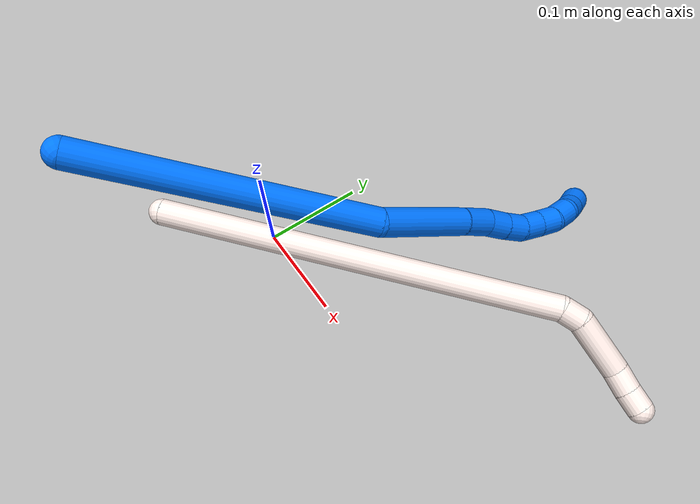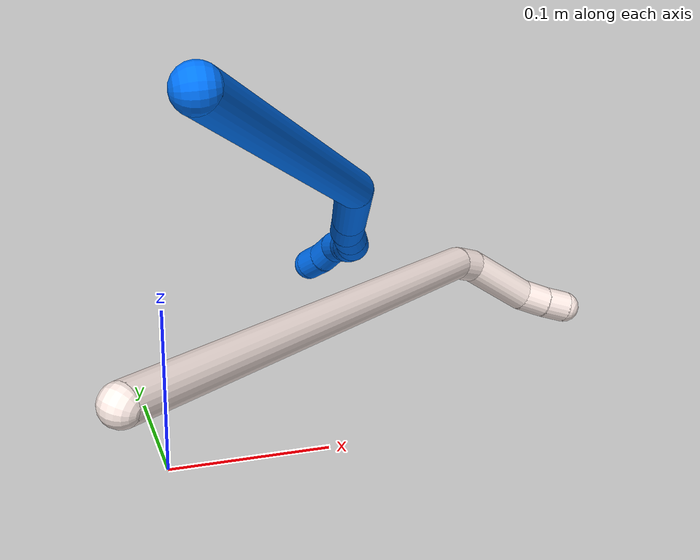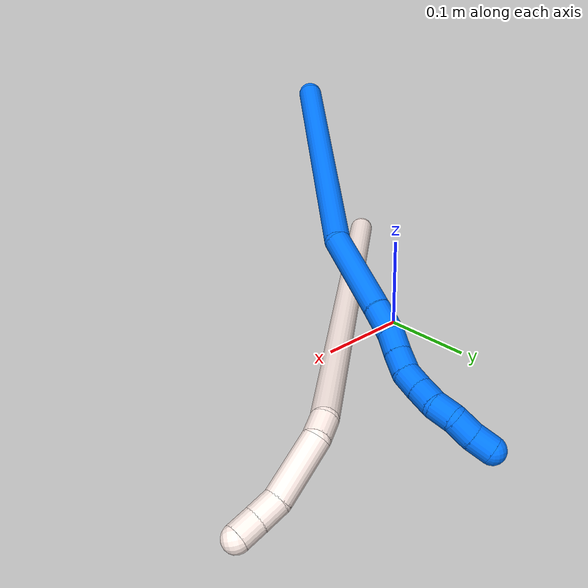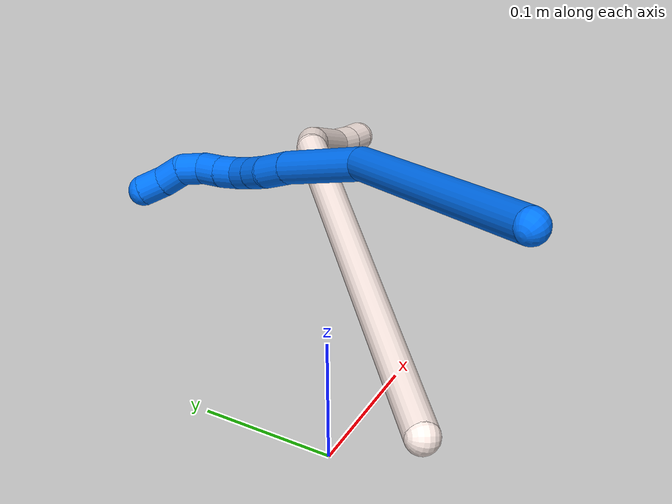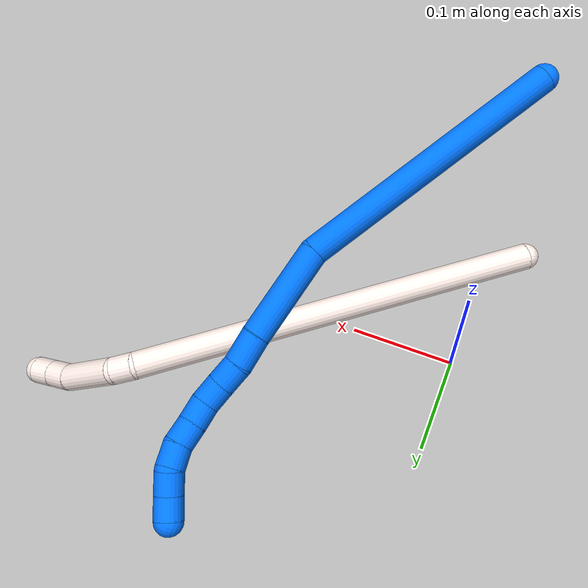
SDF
<sdf version="1.7">
 <world name="default">
  <model name="photoneo_s_sensor">
   <static>1</static>
   <pose>0 0 2 1.57079 1.57079 3.14159</pose>
   <link name="link">
    <inertial><mass>0.1</mass></inertial>
    <sensor name="sensor" type="depth">
     <update_rate>30</update_rate>
     <camera>
      <horizontal_fov>1.22</horizontal_fov>
      <image><width>1920</width><height>1200</height><format>B8G8R8</format></image>
      <clip><near>0.1</near><far>4</far></clip>
      <depth_camera><output>points</output></depth_camera>
     </camera>
     <plugin name="camera_plugin" filename="libgazebo_ros_depth_camera.so">
      <baseline>0.2</baseline>
      <alwaysOn>1</alwaysOn>
      <updateRate>0.0</updateRate>
      <cameraName>camera_ir</cameraName>
      <imageTopicName>/camera/color/image_raw</imageTopicName>
      <cameraInfoTopicName>/camera/color/camera_info</cameraInfoTopicName>
      <depthImageTopicName>/camera/depth/image_raw</depthImageTopicName>
      <depthImageCameraInfoTopicName>/camera/depth/camera_info</depthImageCameraInfoTopicName>
      <pointCloudTopicName>/camera/depth/points</pointCloudTopicName>
      <frameName>fr_optical</frameName>
      <pointCloudCutoff>0.1</pointCloudCutoff>
      <pointCloudCutoffMax>2.0</pointCloudCutoffMax>
      <distortionK1>0</distortionK1>
      <distortionK2>0</distortionK2>
      <distortionK3>0</distortionK3>
      <distortionT1>0</distortionT1>
      <distortionT2>0</distortionT2>
      <CxPrime>0</CxPrime>
      <Cx>0</Cx>
      <Cy>0</Cy>
      <focalLength>0</focalLength>
      <hackBaseline>0</hackBaseline>
     </plugin>
    </sensor>
   </link>
  </model>
  <model name="bin">
   <static>1</static>
   <link name="bottom">
    <collision name="collision-bottom">
     <pose>0 0 -0.01 0 -0 0</pose>
     <geometry><box><size>0.8 0.6 0.02</size></box></geometry>
     <surface>
      <friction><ode><mu>100</mu><mu2>100</mu2></ode></friction>
      <contact><collide_bitmask>65535</collide_bitmask></contact>
     </surface>
    </collision>
   </link>
   <link name="west_wall">
    <collision name="collision-west_wall">
     <pose>-0.41 0 0.1 0 -0 0</pose>
     <geometry><box><size>0.02 0.6 0.2</size></box></geometry>
     <surface>
      <friction><ode><mu>100</mu><mu2>100</mu2></ode></friction>
      <contact><collide_bitmask>65535</collide_bitmask></contact>
     </surface>
    </collision>
   </link>
   <link name="east_wall">
    <collision name="collision-east_wall">
     <pose>0.41 0 0.1 0 -0 0</pose>
     <geometry><box><size>0.02 0.6 0.2</size></box></geometry>
     <surface>
      <friction><ode><mu>100</mu><mu2>100</mu2></ode></friction>
      <contact><collide_bitmask>65535</collide_bitmask></contact>
     </surface>
    </collision>
   </link>
   <link name="south_wall">
    <collision name="collision-south_wall">
     <pose>0 -0.31 0.1 0 -0 0</pose>
     <geometry><box><size>0.8 0.02 0.2</size></box></geometry>
     <surface>
      <friction><ode><mu>100</mu><mu2>100</mu2></ode></friction>
      <contact><collide_bitmask>65535</collide_bitmask></contact>
     </surface>
    </collision>
   </link>
   <link name="north_wall">
    <collision name="collision-north_wall">
     <pose>0 0.31 0.1 0 -0 0</pose>
     <geometry><box><size>0.8 0.02 0.2</size></box></geometry>
     <surface>
      <friction><ode><mu>100</mu><mu2>100</mu2></ode></friction>
      <contact><collide_bitmask>65535</collide_bitmask></contact>
     </surface>
    </collision>
   </link>
  </model>
  <model name="11">
   <static>0</static>
   <link name="11">
    <collision name="collision-cylinder-e_1_1_4">
     <pose>0.145928 0.11942 0.023235 -1.37863 0.875847 -0.736625</pose>
     <geometry><cylinder><radius>0.0125</radius><length>0.379979</length></cylinder></geometry>
     <surface>
      <friction><ode><mu>1.16</mu><mu2>1.16</mu2><slip1>0</slip1><slip2>0</slip2></ode></friction>
      <contact><ode><kp>1e+06</kp><kd>1</kd><max_vel>0</max_vel><min_depth>0.001</min_depth></ode></contact>
     </surface>
    </collision>
    <visual name="visual-cylinder-e_1_1_4">
     <pose>0.145928 0.11942 0.023235 -1.37863 0.875847 -0.736625</pose>
     <geometry><cylinder><radius>0.0125</radius><length>0.379979</length></cylinder></geometry>
     <material><ambient>1 0.933333 0.909804 1</ambient></material>
    </visual>
    <collision name="collision-cylinder-e_2_4_5">
     <pose>0.300327 0.243143 0.050379 -0.833362 0.969287 -0.457907</pose>
     <geometry><cylinder><radius>0.0125</radius><length>0.020547</length></cylinder></geometry>
     <surface>
      <friction><ode><mu>1.16</mu><mu2>1.16</mu2><slip1>0</slip1><slip2>0</slip2></ode></friction>
      <contact><ode><kp>1e+06</kp><kd>1</kd><max_vel>0</max_vel><min_depth>0.001</min_depth></ode></contact>
     </surface>
    </collision>
    <visual name="visual-cylinder-e_2_4_5">
     <pose>0.300327 0.243143 0.050379 -0.833362 0.969287 -0.457907</pose>
     <geometry><cylinder><radius>0.0125</radius><length>0.020547</length></cylinder></geometry>
     <material><ambient>1 0.933333 0.909804 1</ambient></material>
    </visual>
    <collision name="collision-cylinder-e_3_5_6">
     <pose>0.330628 0.251051 0.072545 -0.19492 0.864873 -0.090194</pose>
     <geometry><cylinder><radius>0.0125</radius><length>0.057373</length></cylinder></geometry>
     <surface>
      <friction><ode><mu>1.16</mu><mu2>1.16</mu2><slip1>0</slip1><slip2>0</slip2></ode></friction>
      <contact><ode><kp>1e+06</kp><kd>1</kd><max_vel>0</max_vel><min_depth>0.001</min_depth></ode></contact>
     </surface>
    </collision>
    <visual name="visual-cylinder-e_3_5_6">
     <pose>0.330628 0.251051 0.072545 -0.19492 0.864873 -0.090194</pose>
     <geometry><cylinder><radius>0.0125</radius><length>0.057373</length></cylinder></geometry>
     <material><ambient>1 0.933333 0.909804 1</ambient></material>
    </visual>
    <collision name="collision-cylinder-e_4_6_7">
     <pose>0.358748 0.257308 0.099434 -0.298237 0.608314 -0.094246</pose>
     <geometry><cylinder><radius>0.0125</radius><length>0.022008</length></cylinder></geometry>
     <surface>
      <friction><ode><mu>1.16</mu><mu2>1.16</mu2><slip1>0</slip1><slip2>0</slip2></ode></friction>
      <contact><ode><kp>1e+06</kp><kd>1</kd><max_vel>0</max_vel><min_depth>0.001</min_depth></ode></contact>
     </surface>
    </collision>
    <visual name="visual-cylinder-e_4_6_7">
     <pose>0.358748 0.257308 0.099434 -0.298237 0.608314 -0.094246</pose>
     <geometry><cylinder><radius>0.0125</radius><length>0.022008</length></cylinder></geometry>
     <material><ambient>1 0.933333 0.909804 1</ambient></material>
    </visual>
    <collision name="collision-cylinder-e_5_7_2">
     <pose>0.370748 0.263136 0.115696 -0.394249 0.604713 -0.124431</pose>
     <geometry><cylinder><radius>0.0125</radius><length>0.020093</length></cylinder></geometry>
     <surface>
      <friction><ode><mu>1.16</mu><mu2>1.16</mu2><slip1>0</slip1><slip2>0</slip2></ode></friction>
      <contact><ode><kp>1e+06</kp><kd>1</kd><max_vel>0</max_vel><min_depth>0.001</min_depth></ode></contact>
     </surface>
    </collision>
    <visual name="visual-cylinder-e_5_7_2">
     <pose>0.370748 0.263136 0.115696 -0.394249 0.604713 -0.124431</pose>
     <geometry><cylinder><radius>0.0125</radius><length>0.020093</length></cylinder></geometry>
     <material><ambient>1 0.933333 0.909804 1</ambient></material>
    </visual>
    <collision name="collision-sphere-2">
     <pose>0.37646 0.266311 0.123327 0 -0 0</pose>
     <geometry><sphere><radius>0.0125</radius></sphere></geometry>
     <surface>
      <friction><ode><mu>1.16</mu><mu2>1.16</mu2><slip1>0</slip1><slip2>0</slip2></ode></friction>
      <contact><ode><kp>1e+06</kp><kd>1</kd><max_vel>0</max_vel><min_depth>0.001</min_depth></ode></contact>
     </surface>
    </collision>
    <visual name="visual-sphere-2">
     <pose>0.37646 0.266311 0.123327 0 -0 0</pose>
     <geometry><sphere><radius>0.0125</radius></sphere></geometry>
     <material><ambient>1 0.933333 0.909804 1</ambient></material>
    </visual>
    <collision name="collision-sphere-7">
     <pose>0.365036 0.259962 0.108065 0 -0 0</pose>
     <geometry><sphere><radius>0.0125</radius></sphere></geometry>
     <surface>
      <friction><ode><mu>1.16</mu><mu2>1.16</mu2><slip1>0</slip1><slip2>0</slip2></ode></friction>
      <contact><ode><kp>1e+06</kp><kd>1</kd><max_vel>0</max_vel><min_depth>0.001</min_depth></ode></contact>
     </surface>
    </collision>
    <visual name="visual-sphere-7">
     <pose>0.365036 0.259962 0.108065 0 -0 0</pose>
     <geometry><sphere><radius>0.0125</radius></sphere></geometry>
     <material><ambient>1 0.933333 0.909804 1</ambient></material>
    </visual>
    <collision name="collision-sphere-6">
     <pose>0.352459 0.254655 0.090803 0 -0 0</pose>
     <geometry><sphere><radius>0.0125</radius></sphere></geometry>
     <surface>
      <friction><ode><mu>1.16</mu><mu2>1.16</mu2><slip1>0</slip1><slip2>0</slip2></ode></friction>
      <contact><ode><kp>1e+06</kp><kd>1</kd><max_vel>0</max_vel><min_depth>0.001</min_depth></ode></contact>
     </surface>
    </collision>
    <visual name="visual-sphere-6">
     <pose>0.352459 0.254655 0.090803 0 -0 0</pose>
     <geometry><sphere><radius>0.0125</radius></sphere></geometry>
     <material><ambient>1 0.933333 0.909804 1</ambient></material>
    </visual>
    <collision name="collision-sphere-5">
     <pose>0.308798 0.247446 0.054288 0 -0 0</pose>
     <geometry><sphere><radius>0.0125</radius></sphere></geometry>
     <surface>
      <friction><ode><mu>1.16</mu><mu2>1.16</mu2><slip1>0</slip1><slip2>0</slip2></ode></friction>
      <contact><ode><kp>1e+06</kp><kd>1</kd><max_vel>0</max_vel><min_depth>0.001</min_depth></ode></contact>
     </surface>
    </collision>
    <visual name="visual-sphere-5">
     <pose>0.308798 0.247446 0.054288 0 -0 0</pose>
     <geometry><sphere><radius>0.0125</radius></sphere></geometry>
     <material><ambient>1 0.933333 0.909804 1</ambient></material>
    </visual>
    <collision name="collision-sphere-1">
     <geometry><sphere><radius>0.0125</radius></sphere></geometry>
     <surface>
      <friction><ode><mu>1.16</mu><mu2>1.16</mu2><slip1>0</slip1><slip2>0</slip2></ode></friction>
      <contact><ode><kp>1e+06</kp><kd>1</kd><max_vel>0</max_vel><min_depth>0.001</min_depth></ode></contact>
     </surface>
    </collision>
    <visual name="visual-sphere-1">
     <geometry><sphere><radius>0.0125</radius></sphere></geometry>
     <material><ambient>1 0.933333 0.909804 1</ambient></material>
    </visual>
    <collision name="collision-sphere-4">
     <pose>0.291857 0.23884 0.04647 0 -0 0</pose>
     <geometry><sphere><radius>0.0125</radius></sphere></geometry>
     <surface>
      <friction><ode><mu>1.16</mu><mu2>1.16</mu2><slip1>0</slip1><slip2>0</slip2></ode></friction>
      <contact><ode><kp>1e+06</kp><kd>1</kd><max_vel>0</max_vel><min_depth>0.001</min_depth></ode></contact>
     </surface>
    </collision>
    <visual name="visual-sphere-4">
     <pose>0.291857 0.23884 0.04647 0 -0 0</pose>
     <geometry><sphere><radius>0.0125</radius></sphere></geometry>
     <material><ambient>1 0.933333 0.909804 1</ambient></material>
    </visual>
    <inertial>
     <pose>0.191869 0.151453 0.037078 0 -0 0</pose>
     <mass>0.5</mass>
     <inertia>
      <ixx>0.000245</ixx>
      <ixy>0</ixy>
      <ixz>0</ixz>
      <iyy>0.00104</iyy>
      <iyz>0</iyz>
      <izz>-0.006417</izz>
     </inertia>
    </inertial>
   </link>
   <pose>-0.034711 -0.088538 0.082549 1.87523 0.685722 1.01568</pose>
  </model>
  <model name="14">
   <static>0</static>
   <link name="14">
    <collision name="collision-cylinder-e_1_1_4">
     <pose>-0.02235 0.107897 0.053116 -1.11334 -0.183749 0.114549</pose>
     <geometry><cylinder><radius>0.0125</radius><length>0.244644</length></cylinder></geometry>
     <surface>
      <friction><ode><mu>1.16</mu><mu2>1.16</mu2><slip1>0</slip1><slip2>0</slip2></ode></friction>
      <contact><ode><kp>1e+06</kp><kd>1</kd><max_vel>0</max_vel><min_depth>0.001</min_depth></ode></contact>
     </surface>
    </collision>
    <visual name="visual-cylinder-e_1_1_4">
     <pose>-0.02235 0.107897 0.053116 -1.11334 -0.183749 0.114549</pose>
     <geometry><cylinder><radius>0.0125</radius><length>0.244644</length></cylinder></geometry>
     <material><ambient>0 0.462745 1 1</ambient></material>
    </visual>
    <collision name="collision-cylinder-e_2_4_5">
     <pose>-0.052639 0.257201 0.111399 -1.44664 -0.188003 0.166107</pose>
     <geometry><cylinder><radius>0.0125</radius><length>0.084953</length></cylinder></geometry>
     <surface>
      <friction><ode><mu>1.16</mu><mu2>1.16</mu2><slip1>0</slip1><slip2>0</slip2></ode></friction>
      <contact><ode><kp>1e+06</kp><kd>1</kd><max_vel>0</max_vel><min_depth>0.001</min_depth></ode></contact>
     </surface>
    </collision>
    <visual name="visual-cylinder-e_2_4_5">
     <pose>-0.052639 0.257201 0.111399 -1.44664 -0.188003 0.166107</pose>
     <geometry><cylinder><radius>0.0125</radius><length>0.084953</length></cylinder></geometry>
     <material><ambient>0 0.462745 1 1</ambient></material>
    </visual>
    <collision name="collision-cylinder-e_3_5_6">
     <pose>-0.062182 0.312596 0.117736 -1.48739 -0.113766 0.10467</pose>
     <geometry><cylinder><radius>0.0125</radius><length>0.028256</length></cylinder></geometry>
     <surface>
      <friction><ode><mu>1.16</mu><mu2>1.16</mu2><slip1>0</slip1><slip2>0</slip2></ode></friction>
      <contact><ode><kp>1e+06</kp><kd>1</kd><max_vel>0</max_vel><min_depth>0.001</min_depth></ode></contact>
     </surface>
    </collision>
    <visual name="visual-cylinder-e_3_5_6">
     <pose>-0.062182 0.312596 0.117736 -1.48739 -0.113766 0.10467</pose>
     <geometry><cylinder><radius>0.0125</radius><length>0.028256</length></cylinder></geometry>
     <material><ambient>0 0.462745 1 1</ambient></material>
    </visual>
    <collision name="collision-cylinder-e_4_6_7">
     <pose>-0.064649 0.33677 0.121656 -1.30701 -0.081636 0.062527</pose>
     <geometry><cylinder><radius>0.0125</radius><length>0.021171</length></cylinder></geometry>
     <surface>
      <friction><ode><mu>1.16</mu><mu2>1.16</mu2><slip1>0</slip1><slip2>0</slip2></ode></friction>
      <contact><ode><kp>1e+06</kp><kd>1</kd><max_vel>0</max_vel><min_depth>0.001</min_depth></ode></contact>
     </surface>
    </collision>
    <visual name="visual-cylinder-e_4_6_7">
     <pose>-0.064649 0.33677 0.121656 -1.30701 -0.081636 0.062527</pose>
     <geometry><cylinder><radius>0.0125</radius><length>0.021171</length></cylinder></geometry>
     <material><ambient>0 0.462745 1 1</ambient></material>
    </visual>
    <collision name="collision-cylinder-e_5_7_8">
     <pose>-0.066926 0.356835 0.126796 -1.33359 -0.138222 0.108854</pose>
     <geometry><cylinder><radius>0.0125</radius><length>0.020524</length></cylinder></geometry>
     <surface>
      <friction><ode><mu>1.16</mu><mu2>1.16</mu2><slip1>0</slip1><slip2>0</slip2></ode></friction>
      <contact><ode><kp>1e+06</kp><kd>1</kd><max_vel>0</max_vel><min_depth>0.001</min_depth></ode></contact>
     </surface>
    </collision>
    <visual name="visual-cylinder-e_5_7_8">
     <pose>-0.066926 0.356835 0.126796 -1.33359 -0.138222 0.108854</pose>
     <geometry><cylinder><radius>0.0125</radius><length>0.020524</length></cylinder></geometry>
     <material><ambient>0 0.462745 1 1</ambient></material>
    </visual>
    <collision name="collision-cylinder-e_6_8_9">
     <pose>-0.071768 0.376205 0.129466 -1.54109 -0.346482 0.336533</pose>
     <geometry><cylinder><radius>0.0125</radius><length>0.020189</length></cylinder></geometry>
     <surface>
      <friction><ode><mu>1.16</mu><mu2>1.16</mu2><slip1>0</slip1><slip2>0</slip2></ode></friction>
      <contact><ode><kp>1e+06</kp><kd>1</kd><max_vel>0</max_vel><min_depth>0.001</min_depth></ode></contact>
     </surface>
    </collision>
    <visual name="visual-cylinder-e_6_8_9">
     <pose>-0.071768 0.376205 0.129466 -1.54109 -0.346482 0.336533</pose>
     <geometry><cylinder><radius>0.0125</radius><length>0.020189</length></cylinder></geometry>
     <material><ambient>0 0.462745 1 1</ambient></material>
    </visual>
    <collision name="collision-cylinder-e_7_9_10">
     <pose>-0.07934 0.394786 0.130254 -1.51524 -0.427151 0.404698</pose>
     <geometry><cylinder><radius>0.0125</radius><length>0.020008</length></cylinder></geometry>
     <surface>
      <friction><ode><mu>1.16</mu><mu2>1.16</mu2><slip1>0</slip1><slip2>0</slip2></ode></friction>
      <contact><ode><kp>1e+06</kp><kd>1</kd><max_vel>0</max_vel><min_depth>0.001</min_depth></ode></contact>
     </surface>
    </collision>
    <visual name="visual-cylinder-e_7_9_10">
     <pose>-0.07934 0.394786 0.130254 -1.51524 -0.427151 0.404698</pose>
     <geometry><cylinder><radius>0.0125</radius><length>0.020008</length></cylinder></geometry>
     <material><ambient>0 0.462745 1 1</ambient></material>
    </visual>
    <collision name="collision-cylinder-e_8_10_11">
     <pose>-0.087333 0.412928 0.128365 -1.82938 -0.389986 0.502242</pose>
     <geometry><cylinder><radius>0.0125</radius><length>0.020243</length></cylinder></geometry>
     <surface>
      <friction><ode><mu>1.16</mu><mu2>1.16</mu2><slip1>0</slip1><slip2>0</slip2></ode></friction>
      <contact><ode><kp>1e+06</kp><kd>1</kd><max_vel>0</max_vel><min_depth>0.001</min_depth></ode></contact>
     </surface>
    </collision>
    <visual name="visual-cylinder-e_8_10_11">
     <pose>-0.087333 0.412928 0.128365 -1.82938 -0.389986 0.502242</pose>
     <geometry><cylinder><radius>0.0125</radius><length>0.020243</length></cylinder></geometry>
     <material><ambient>0 0.462745 1 1</ambient></material>
    </visual>
    <collision name="collision-cylinder-e_9_11_12">
     <pose>-0.090944 0.431091 0.12185 -1.99554 0.023724 -0.036765</pose>
     <geometry><cylinder><radius>0.0125</radius><length>0.020009</length></cylinder></geometry>
     <surface>
      <friction><ode><mu>1.16</mu><mu2>1.16</mu2><slip1>0</slip1><slip2>0</slip2></ode></friction>
      <contact><ode><kp>1e+06</kp><kd>1</kd><max_vel>0</max_vel><min_depth>0.001</min_depth></ode></contact>
     </surface>
    </collision>
    <visual name="visual-cylinder-e_9_11_12">
     <pose>-0.090944 0.431091 0.12185 -1.99554 0.023724 -0.036765</pose>
     <geometry><cylinder><radius>0.0125</radius><length>0.020009</length></cylinder></geometry>
     <material><ambient>0 0.462745 1 1</ambient></material>
    </visual>
    <collision name="collision-cylinder-e_10_12_2">
     <pose>-0.09185 0.448902 0.112926 -2.07525 -0.114609 0.193796</pose>
     <geometry><cylinder><radius>0.0125</radius><length>0.020002</length></cylinder></geometry>
     <surface>
      <friction><ode><mu>1.16</mu><mu2>1.16</mu2><slip1>0</slip1><slip2>0</slip2></ode></friction>
      <contact><ode><kp>1e+06</kp><kd>1</kd><max_vel>0</max_vel><min_depth>0.001</min_depth></ode></contact>
     </surface>
    </collision>
    <visual name="visual-cylinder-e_10_12_2">
     <pose>-0.09185 0.448902 0.112926 -2.07525 -0.114609 0.193796</pose>
     <geometry><cylinder><radius>0.0125</radius><length>0.020002</length></cylinder></geometry>
     <material><ambient>0 0.462745 1 1</ambient></material>
    </visual>
    <collision name="collision-sphere-2">
     <pose>-0.092994 0.4576 0.108124 0 -0 0</pose>
     <geometry><sphere><radius>0.0125</radius></sphere></geometry>
     <surface>
      <friction><ode><mu>1.16</mu><mu2>1.16</mu2><slip1>0</slip1><slip2>0</slip2></ode></friction>
      <contact><ode><kp>1e+06</kp><kd>1</kd><max_vel>0</max_vel><min_depth>0.001</min_depth></ode></contact>
     </surface>
    </collision>
    <visual name="visual-sphere-2">
     <pose>-0.092994 0.4576 0.108124 0 -0 0</pose>
     <geometry><sphere><radius>0.0125</radius></sphere></geometry>
     <material><ambient>0 0.462745 1 1</ambient></material>
    </visual>
    <collision name="collision-sphere-12">
     <pose>-0.090706 0.440204 0.117728 0 -0 0</pose>
     <geometry><sphere><radius>0.0125</radius></sphere></geometry>
     <surface>
      <friction><ode><mu>1.16</mu><mu2>1.16</mu2><slip1>0</slip1><slip2>0</slip2></ode></friction>
      <contact><ode><kp>1e+06</kp><kd>1</kd><max_vel>0</max_vel><min_depth>0.001</min_depth></ode></contact>
     </surface>
    </collision>
    <visual name="visual-sphere-12">
     <pose>-0.090706 0.440204 0.117728 0 -0 0</pose>
     <geometry><sphere><radius>0.0125</radius></sphere></geometry>
     <material><ambient>0 0.462745 1 1</ambient></material>
    </visual>
    <collision name="collision-sphere-11">
     <pose>-0.091181 0.421978 0.125971 0 -0 0</pose>
     <geometry><sphere><radius>0.0125</radius></sphere></geometry>
     <surface>
      <friction><ode><mu>1.16</mu><mu2>1.16</mu2><slip1>0</slip1><slip2>0</slip2></ode></friction>
      <contact><ode><kp>1e+06</kp><kd>1</kd><max_vel>0</max_vel><min_depth>0.001</min_depth></ode></contact>
     </surface>
    </collision>
    <visual name="visual-sphere-11">
     <pose>-0.091181 0.421978 0.125971 0 -0 0</pose>
     <geometry><sphere><radius>0.0125</radius></sphere></geometry>
     <material><ambient>0 0.462745 1 1</ambient></material>
    </visual>
    <collision name="collision-sphere-10">
     <pose>-0.083485 0.403877 0.130759 0 -0 0</pose>
     <geometry><sphere><radius>0.0125</radius></sphere></geometry>
     <surface>
      <friction><ode><mu>1.16</mu><mu2>1.16</mu2><slip1>0</slip1><slip2>0</slip2></ode></friction>
      <contact><ode><kp>1e+06</kp><kd>1</kd><max_vel>0</max_vel><min_depth>0.001</min_depth></ode></contact>
     </surface>
    </collision>
    <visual name="visual-sphere-10">
     <pose>-0.083485 0.403877 0.130759 0 -0 0</pose>
     <geometry><sphere><radius>0.0125</radius></sphere></geometry>
     <material><ambient>0 0.462745 1 1</ambient></material>
    </visual>
    <collision name="collision-sphere-9">
     <pose>-0.075196 0.385695 0.129748 0 -0 0</pose>
     <geometry><sphere><radius>0.0125</radius></sphere></geometry>
     <surface>
      <friction><ode><mu>1.16</mu><mu2>1.16</mu2><slip1>0</slip1><slip2>0</slip2></ode></friction>
      <contact><ode><kp>1e+06</kp><kd>1</kd><max_vel>0</max_vel><min_depth>0.001</min_depth></ode></contact>
     </surface>
    </collision>
    <visual name="visual-sphere-9">
     <pose>-0.075196 0.385695 0.129748 0 -0 0</pose>
     <geometry><sphere><radius>0.0125</radius></sphere></geometry>
     <material><ambient>0 0.462745 1 1</ambient></material>
    </visual>
    <collision name="collision-sphere-4">
     <pose>-0.044701 0.215795 0.106232 0 -0 0</pose>
     <geometry><sphere><radius>0.0125</radius></sphere></geometry>
     <surface>
      <friction><ode><mu>1.16</mu><mu2>1.16</mu2><slip1>0</slip1><slip2>0</slip2></ode></friction>
      <contact><ode><kp>1e+06</kp><kd>1</kd><max_vel>0</max_vel><min_depth>0.001</min_depth></ode></contact>
     </surface>
    </collision>
    <visual name="visual-sphere-4">
     <pose>-0.044701 0.215795 0.106232 0 -0 0</pose>
     <geometry><sphere><radius>0.0125</radius></sphere></geometry>
     <material><ambient>0 0.462745 1 1</ambient></material>
    </visual>
    <collision name="collision-sphere-1">
     <geometry><sphere><radius>0.0125</radius></sphere></geometry>
     <surface>
      <friction><ode><mu>1.16</mu><mu2>1.16</mu2><slip1>0</slip1><slip2>0</slip2></ode></friction>
      <contact><ode><kp>1e+06</kp><kd>1</kd><max_vel>0</max_vel><min_depth>0.001</min_depth></ode></contact>
     </surface>
    </collision>
    <visual name="visual-sphere-1">
     <geometry><sphere><radius>0.0125</radius></sphere></geometry>
     <material><ambient>0 0.462745 1 1</ambient></material>
    </visual>
    <collision name="collision-sphere-8">
     <pose>-0.06834 0.366714 0.129184 0 -0 0</pose>
     <geometry><sphere><radius>0.0125</radius></sphere></geometry>
     <surface>
      <friction><ode><mu>1.16</mu><mu2>1.16</mu2><slip1>0</slip1><slip2>0</slip2></ode></friction>
      <contact><ode><kp>1e+06</kp><kd>1</kd><max_vel>0</max_vel><min_depth>0.001</min_depth></ode></contact>
     </surface>
    </collision>
    <visual name="visual-sphere-8">
     <pose>-0.06834 0.366714 0.129184 0 -0 0</pose>
     <geometry><sphere><radius>0.0125</radius></sphere></geometry>
     <material><ambient>0 0.462745 1 1</ambient></material>
    </visual>
    <collision name="collision-sphere-5">
     <pose>-0.060578 0.298608 0.116567 0 -0 0</pose>
     <geometry><sphere><radius>0.0125</radius></sphere></geometry>
     <surface>
      <friction><ode><mu>1.16</mu><mu2>1.16</mu2><slip1>0</slip1><slip2>0</slip2></ode></friction>
      <contact><ode><kp>1e+06</kp><kd>1</kd><max_vel>0</max_vel><min_depth>0.001</min_depth></ode></contact>
     </surface>
    </collision>
    <visual name="visual-sphere-5">
     <pose>-0.060578 0.298608 0.116567 0 -0 0</pose>
     <geometry><sphere><radius>0.0125</radius></sphere></geometry>
     <material><ambient>0 0.462745 1 1</ambient></material>
    </visual>
    <collision name="collision-sphere-6">
     <pose>-0.063786 0.326584 0.118905 0 -0 0</pose>
     <geometry><sphere><radius>0.0125</radius></sphere></geometry>
     <surface>
      <friction><ode><mu>1.16</mu><mu2>1.16</mu2><slip1>0</slip1><slip2>0</slip2></ode></friction>
      <contact><ode><kp>1e+06</kp><kd>1</kd><max_vel>0</max_vel><min_depth>0.001</min_depth></ode></contact>
     </surface>
    </collision>
    <visual name="visual-sphere-6">
     <pose>-0.063786 0.326584 0.118905 0 -0 0</pose>
     <geometry><sphere><radius>0.0125</radius></sphere></geometry>
     <material><ambient>0 0.462745 1 1</ambient></material>
    </visual>
    <collision name="collision-sphere-7">
     <pose>-0.065512 0.346955 0.124407 0 -0 0</pose>
     <geometry><sphere><radius>0.0125</radius></sphere></geometry>
     <surface>
      <friction><ode><mu>1.16</mu><mu2>1.16</mu2><slip1>0</slip1><slip2>0</slip2></ode></friction>
      <contact><ode><kp>1e+06</kp><kd>1</kd><max_vel>0</max_vel><min_depth>0.001</min_depth></ode></contact>
     </surface>
    </collision>
    <visual name="visual-sphere-7">
     <pose>-0.065512 0.346955 0.124407 0 -0 0</pose>
     <geometry><sphere><radius>0.0125</radius></sphere></geometry>
     <material><ambient>0 0.462745 1 1</ambient></material>
    </visual>
    <inertial>
     <pose>-0.0458 0.225981 0.086957 0 -0 0</pose>
     <mass>0.5</mass>
     <inertia>
      <ixx>0.001409</ixx>
      <ixy>0</ixy>
      <ixz>0</ixz>
      <iyy>0.000756</iyy>
      <iyz>0</iyz>
      <izz>-0.000905</izz>
     </inertia>
    </inertial>
   </link>
   <pose>-0.000955 -0.139373 0.243138 -1.44264 0.897929 -1.57129</pose>
  </model>
 </world>
</sdf>
